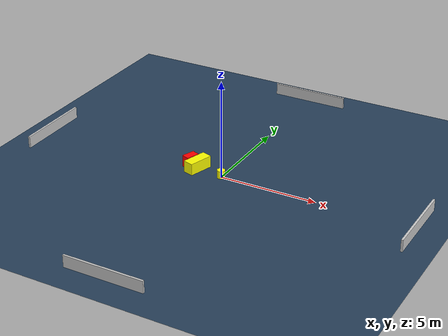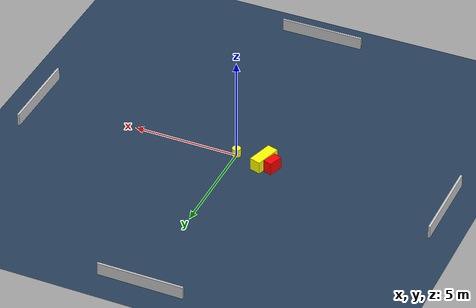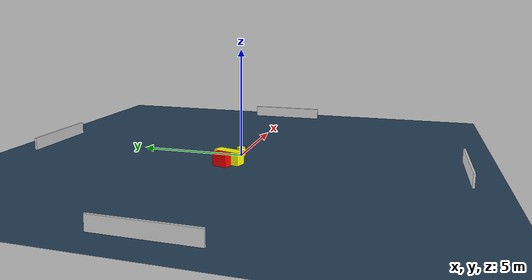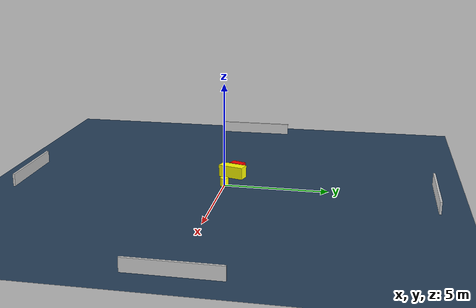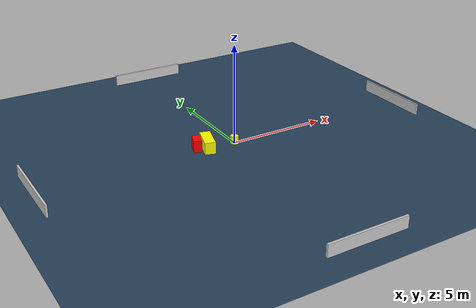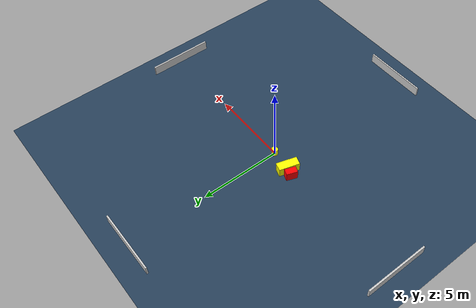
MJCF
<?xml version="1.0" ?>
<mujoco model="generated_environment">
  <option timestep="0.01" integrator="RK4" cone="elliptic"/>
  <default>
    <geom density="1"/>
  </default>
  <asset>
    <texture builtin="gradient" height="3072" name="skybox" rgb1="0.3 0.5 0.7" rgb2="0 0 0" type="skybox" width="512"/>
    <texture builtin="checker" height="300" name="groundplane" rgb1="0.2 0.3 0.4" rgb2="0.1 0.2 0.3" type="2d" width="300"/>
    <material name="groundplane" reflectance="0.2" texrepeat="5 5" texture="groundplane"/>
  </asset>
  <worldbody>
    <light dir="0 0 -1" directional="true" pos="0 0 1.5"/>
    <geom condim="3" friction="0.5 0.005 0.001" material="groundplane" name="floor" pos="0 0 0" size="0 0 0.05" type="plane"/>
    <body name="walls">
      <geom name="wall_1" condim="4" pos="-10.0 0.0 0.3" rgba="0.800000011920929 0.800000011920929 0.800000011920929 1.0" size="0.05 2.0 0.3" type="box"/>
      <geom name="wall_2" condim="4" pos="10.0 0.0 0.3" rgba="0.800000011920929 0.800000011920929 0.800000011920929 1.0" size="0.05 2.0 0.3" type="box"/>
      <geom name="wall_3" condim="4" pos="0.0 -10.0 0.3" rgba="0.800000011920929 0.800000011920929 0.800000011920929 1.0" size="2.0 0.05 0.3" type="box"/>
      <geom name="wall_4" condim="4" pos="0.0 10.0 0.3" rgba="0.800000011920929 0.800000011920929 0.800000011920929 1.0" size="2.0 0.05 0.3" type="box"/>
    </body>
    <body name="robot">
      <joint name="joint_x" type="slide" pos="0 0 0" axis="1 0 0"/>
      <joint name="joint_y" type="slide" pos="0 0 0" axis="0 1 0"/>
      <geom name="robot" type="cylinder" pos="0.0 0.0 0.2" size="0.2 0.2 0.0" mass="5.0" friction="1.0 0.005 0.0001" condim="4" rgba="1.0 1.0 0.0 1.0"/>
    </body>
    <body name="obstacle_1_movable">
      <geom name="obstacle_1_movable" condim="4" pos="-1.4068177016659797 0.15371818924310582 0.3" euler="0 0 253.51486304771947" friction="0.0 0.005 0.001" rgba="1.0 1.0 0.0 1.0" size="0.6394751038802214 0.26676077347109306 0.3" type="box" mass="0.1"/>
      <joint type="free"/>
    </body>
    <body name="obstacle_2_static">
      <geom name="obstacle_2_static" condim="4" pos="-1.9013167711046859 0.32653066058837465 0.3" euler="0 0 250.13659950277648" friction="0.0 0.005 0.001" rgba="1.0 0.0 0.0 1.0" size="0.34526697204435874 0.20185333869955668 0.3" type="box"/>
    </body>
  </worldbody>
  <actuator>
    <motor name="actuator_x" joint="joint_x" gear="1" ctrlrange="-1 1"/>
    <motor name="actuator_y" joint="joint_y" gear="1" ctrlrange="-1 1"/>
  </actuator>
</mujoco>
